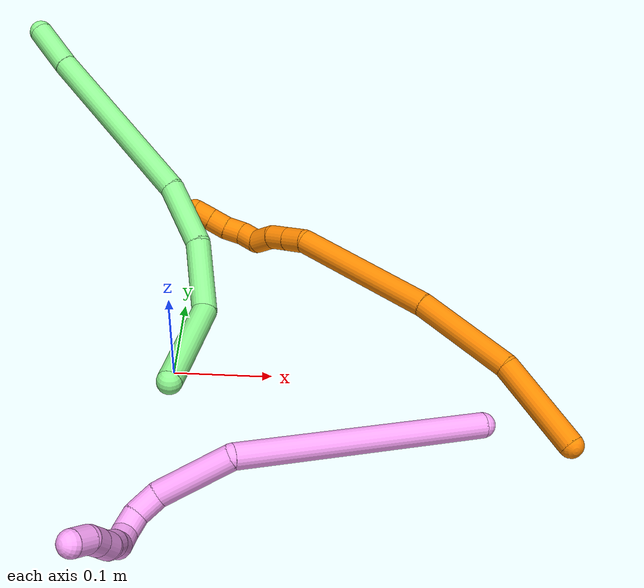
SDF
<sdf version="1.7">
 <world name="default">
  <model name="4">
   <static>0</static>
   <link name="4">
    <collision name="collision-cylinder-e_1_1_4">
     <pose>-0.051315 -0.038771 -0.110385 2.80382 -0.413337 -1.77603</pose>
     <geometry><cylinder><radius>0.0125</radius><length>0.255509</length></cylinder></geometry>
     <surface>
      <friction><ode><mu>1.16</mu><mu2>1.16</mu2><slip1>0</slip1><slip2>0</slip2></ode></friction>
      <contact><ode><kp>1e+06</kp><kd>1</kd><max_vel>0</max_vel><min_depth>0.001</min_depth></ode></contact>
     </surface>
    </collision>
    <visual name="visual-cylinder-e_1_1_4">
     <pose>-0.051315 -0.038771 -0.110385 2.80382 -0.413337 -1.77603</pose>
     <geometry><cylinder><radius>0.0125</radius><length>0.255509</length></cylinder></geometry>
     <material><ambient>1 0.65098 0.996078 1</ambient></material>
    </visual>
    <collision name="collision-cylinder-e_2_4_5">
     <pose>-0.135547 -0.089374 -0.237269 2.51947 -1.01811 -2.09636</pose>
     <geometry><cylinder><radius>0.0125</radius><length>0.077351</length></cylinder></geometry>
     <surface>
      <friction><ode><mu>1.16</mu><mu2>1.16</mu2><slip1>0</slip1><slip2>0</slip2></ode></friction>
      <contact><ode><kp>1e+06</kp><kd>1</kd><max_vel>0</max_vel><min_depth>0.001</min_depth></ode></contact>
     </surface>
    </collision>
    <visual name="visual-cylinder-e_2_4_5">
     <pose>-0.135547 -0.089374 -0.237269 2.51947 -1.01811 -2.09636</pose>
     <geometry><cylinder><radius>0.0125</radius><length>0.077351</length></cylinder></geometry>
     <material><ambient>1 0.65098 0.996078 1</ambient></material>
    </visual>
    <collision name="collision-cylinder-e_3_5_6">
     <pose>-0.17902 -0.100192 -0.26141 -3.00962 -0.940059 2.88289</pose>
     <geometry><cylinder><radius>0.0125</radius><length>0.026143</length></cylinder></geometry>
     <surface>
      <friction><ode><mu>1.16</mu><mu2>1.16</mu2><slip1>0</slip1><slip2>0</slip2></ode></friction>
      <contact><ode><kp>1e+06</kp><kd>1</kd><max_vel>0</max_vel><min_depth>0.001</min_depth></ode></contact>
     </surface>
    </collision>
    <visual name="visual-cylinder-e_3_5_6">
     <pose>-0.17902 -0.100192 -0.26141 -3.00962 -0.940059 2.88289</pose>
     <geometry><cylinder><radius>0.0125</radius><length>0.026143</length></cylinder></geometry>
     <material><ambient>1 0.65098 0.996078 1</ambient></material>
    </visual>
    <collision name="collision-cylinder-e_4_6_7">
     <pose>-0.195812 -0.094344 -0.275513 -2.49934 -0.657901 1.59664</pose>
     <geometry><cylinder><radius>0.0125</radius><length>0.020396</length></cylinder></geometry>
     <surface>
      <friction><ode><mu>1.16</mu><mu2>1.16</mu2><slip1>0</slip1><slip2>0</slip2></ode></friction>
      <contact><ode><kp>1e+06</kp><kd>1</kd><max_vel>0</max_vel><min_depth>0.001</min_depth></ode></contact>
     </surface>
    </collision>
    <visual name="visual-cylinder-e_4_6_7">
     <pose>-0.195812 -0.094344 -0.275513 -2.49934 -0.657901 1.59664</pose>
     <geometry><cylinder><radius>0.0125</radius><length>0.020396</length></cylinder></geometry>
     <material><ambient>1 0.65098 0.996078 1</ambient></material>
    </visual>
    <collision name="collision-cylinder-e_5_7_8">
     <pose>-0.202412 -0.083189 -0.289719 -2.45698 -0.036355 0.101947</pose>
     <geometry><cylinder><radius>0.0125</radius><length>0.020007</length></cylinder></geometry>
     <surface>
      <friction><ode><mu>1.16</mu><mu2>1.16</mu2><slip1>0</slip1><slip2>0</slip2></ode></friction>
      <contact><ode><kp>1e+06</kp><kd>1</kd><max_vel>0</max_vel><min_depth>0.001</min_depth></ode></contact>
     </surface>
    </collision>
    <visual name="visual-cylinder-e_5_7_8">
     <pose>-0.202412 -0.083189 -0.289719 -2.45698 -0.036355 0.101947</pose>
     <geometry><cylinder><radius>0.0125</radius><length>0.020007</length></cylinder></geometry>
     <material><ambient>1 0.65098 0.996078 1</ambient></material>
    </visual>
    <collision name="collision-cylinder-e_6_8_9">
     <pose>-0.197648 -0.073632 -0.305464 -2.75736 0.536082 -1.90913</pose>
     <geometry><cylinder><radius>0.0125</radius><length>0.020075</length></cylinder></geometry>
     <surface>
      <friction><ode><mu>1.16</mu><mu2>1.16</mu2><slip1>0</slip1><slip2>0</slip2></ode></friction>
      <contact><ode><kp>1e+06</kp><kd>1</kd><max_vel>0</max_vel><min_depth>0.001</min_depth></ode></contact>
     </surface>
    </collision>
    <visual name="visual-cylinder-e_6_8_9">
     <pose>-0.197648 -0.073632 -0.305464 -2.75736 0.536082 -1.90913</pose>
     <geometry><cylinder><radius>0.0125</radius><length>0.020075</length></cylinder></geometry>
     <material><ambient>1 0.65098 0.996078 1</ambient></material>
    </visual>
    <collision name="collision-cylinder-e_7_9_10">
     <pose>-0.18885 -0.065946 -0.321764 -2.64935 0.371669 -1.28492</pose>
     <geometry><cylinder><radius>0.0125</radius><length>0.020218</length></cylinder></geometry>
     <surface>
      <friction><ode><mu>1.16</mu><mu2>1.16</mu2><slip1>0</slip1><slip2>0</slip2></ode></friction>
      <contact><ode><kp>1e+06</kp><kd>1</kd><max_vel>0</max_vel><min_depth>0.001</min_depth></ode></contact>
     </surface>
    </collision>
    <visual name="visual-cylinder-e_7_9_10">
     <pose>-0.18885 -0.065946 -0.321764 -2.64935 0.371669 -1.28492</pose>
     <geometry><cylinder><radius>0.0125</radius><length>0.020218</length></cylinder></geometry>
     <material><ambient>1 0.65098 0.996078 1</ambient></material>
    </visual>
    <collision name="collision-cylinder-e_8_10_11">
     <pose>-0.180981 -0.060483 -0.339213 -3.03154 0.427933 -2.64507</pose>
     <geometry><cylinder><radius>0.0125</radius><length>0.020232</length></cylinder></geometry>
     <surface>
      <friction><ode><mu>1.16</mu><mu2>1.16</mu2><slip1>0</slip1><slip2>0</slip2></ode></friction>
      <contact><ode><kp>1e+06</kp><kd>1</kd><max_vel>0</max_vel><min_depth>0.001</min_depth></ode></contact>
     </surface>
    </collision>
    <visual name="visual-cylinder-e_8_10_11">
     <pose>-0.180981 -0.060483 -0.339213 -3.03154 0.427933 -2.64507</pose>
     <geometry><cylinder><radius>0.0125</radius><length>0.020232</length></cylinder></geometry>
     <material><ambient>1 0.65098 0.996078 1</ambient></material>
    </visual>
    <collision name="collision-cylinder-e_9_11_12">
     <pose>-0.172535 -0.057888 -0.357275 -2.96568 0.43872 -2.38829</pose>
     <geometry><cylinder><radius>0.0125</radius><length>0.020002</length></cylinder></geometry>
     <surface>
      <friction><ode><mu>1.16</mu><mu2>1.16</mu2><slip1>0</slip1><slip2>0</slip2></ode></friction>
      <contact><ode><kp>1e+06</kp><kd>1</kd><max_vel>0</max_vel><min_depth>0.001</min_depth></ode></contact>
     </surface>
    </collision>
    <visual name="visual-cylinder-e_9_11_12">
     <pose>-0.172535 -0.057888 -0.357275 -2.96568 0.43872 -2.38829</pose>
     <geometry><cylinder><radius>0.0125</radius><length>0.020002</length></cylinder></geometry>
     <material><ambient>1 0.65098 0.996078 1</ambient></material>
    </visual>
    <collision name="collision-cylinder-e_10_12_2">
     <pose>-0.168296 -0.054885 -0.376123 -2.99972 -0.000974 0.013713</pose>
     <geometry><cylinder><radius>0.0125</radius><length>0.020067</length></cylinder></geometry>
     <surface>
      <friction><ode><mu>1.16</mu><mu2>1.16</mu2><slip1>0</slip1><slip2>0</slip2></ode></friction>
      <contact><ode><kp>1e+06</kp><kd>1</kd><max_vel>0</max_vel><min_depth>0.001</min_depth></ode></contact>
     </surface>
    </collision>
    <visual name="visual-cylinder-e_10_12_2">
     <pose>-0.168296 -0.054885 -0.376123 -2.99972 -0.000974 0.013713</pose>
     <geometry><cylinder><radius>0.0125</radius><length>0.020067</length></cylinder></geometry>
     <material><ambient>1 0.65098 0.996078 1</ambient></material>
    </visual>
    <collision name="collision-sphere-2">
     <pose>-0.168306 -0.053466 -0.386056 0 -0 0</pose>
     <geometry><sphere><radius>0.0125</radius></sphere></geometry>
     <surface>
      <friction><ode><mu>1.16</mu><mu2>1.16</mu2><slip1>0</slip1><slip2>0</slip2></ode></friction>
      <contact><ode><kp>1e+06</kp><kd>1</kd><max_vel>0</max_vel><min_depth>0.001</min_depth></ode></contact>
     </surface>
    </collision>
    <visual name="visual-sphere-2">
     <pose>-0.168306 -0.053466 -0.386056 0 -0 0</pose>
     <geometry><sphere><radius>0.0125</radius></sphere></geometry>
     <material><ambient>1 0.65098 0.996078 1</ambient></material>
    </visual>
    <collision name="collision-sphere-12">
     <pose>-0.168286 -0.056304 -0.36619 0 -0 0</pose>
     <geometry><sphere><radius>0.0125</radius></sphere></geometry>
     <surface>
      <friction><ode><mu>1.16</mu><mu2>1.16</mu2><slip1>0</slip1><slip2>0</slip2></ode></friction>
      <contact><ode><kp>1e+06</kp><kd>1</kd><max_vel>0</max_vel><min_depth>0.001</min_depth></ode></contact>
     </surface>
    </collision>
    <visual name="visual-sphere-12">
     <pose>-0.168286 -0.056304 -0.36619 0 -0 0</pose>
     <geometry><sphere><radius>0.0125</radius></sphere></geometry>
     <material><ambient>1 0.65098 0.996078 1</ambient></material>
    </visual>
    <collision name="collision-sphere-11">
     <pose>-0.176783 -0.059473 -0.348361 0 -0 0</pose>
     <geometry><sphere><radius>0.0125</radius></sphere></geometry>
     <surface>
      <friction><ode><mu>1.16</mu><mu2>1.16</mu2><slip1>0</slip1><slip2>0</slip2></ode></friction>
      <contact><ode><kp>1e+06</kp><kd>1</kd><max_vel>0</max_vel><min_depth>0.001</min_depth></ode></contact>
     </surface>
    </collision>
    <visual name="visual-sphere-11">
     <pose>-0.176783 -0.059473 -0.348361 0 -0 0</pose>
     <geometry><sphere><radius>0.0125</radius></sphere></geometry>
     <material><ambient>1 0.65098 0.996078 1</ambient></material>
    </visual>
    <collision name="collision-sphere-10">
     <pose>-0.185179 -0.061494 -0.330065 0 -0 0</pose>
     <geometry><sphere><radius>0.0125</radius></sphere></geometry>
     <surface>
      <friction><ode><mu>1.16</mu><mu2>1.16</mu2><slip1>0</slip1><slip2>0</slip2></ode></friction>
      <contact><ode><kp>1e+06</kp><kd>1</kd><max_vel>0</max_vel><min_depth>0.001</min_depth></ode></contact>
     </surface>
    </collision>
    <visual name="visual-sphere-10">
     <pose>-0.185179 -0.061494 -0.330065 0 -0 0</pose>
     <geometry><sphere><radius>0.0125</radius></sphere></geometry>
     <material><ambient>1 0.65098 0.996078 1</ambient></material>
    </visual>
    <collision name="collision-sphere-9">
     <pose>-0.192522 -0.070397 -0.313464 0 -0 0</pose>
     <geometry><sphere><radius>0.0125</radius></sphere></geometry>
     <surface>
      <friction><ode><mu>1.16</mu><mu2>1.16</mu2><slip1>0</slip1><slip2>0</slip2></ode></friction>
      <contact><ode><kp>1e+06</kp><kd>1</kd><max_vel>0</max_vel><min_depth>0.001</min_depth></ode></contact>
     </surface>
    </collision>
    <visual name="visual-sphere-9">
     <pose>-0.192522 -0.070397 -0.313464 0 -0 0</pose>
     <geometry><sphere><radius>0.0125</radius></sphere></geometry>
     <material><ambient>1 0.65098 0.996078 1</ambient></material>
    </visual>
    <collision name="collision-sphere-4">
     <pose>-0.10263 -0.077542 -0.220769 0 -0 0</pose>
     <geometry><sphere><radius>0.0125</radius></sphere></geometry>
     <surface>
      <friction><ode><mu>1.16</mu><mu2>1.16</mu2><slip1>0</slip1><slip2>0</slip2></ode></friction>
      <contact><ode><kp>1e+06</kp><kd>1</kd><max_vel>0</max_vel><min_depth>0.001</min_depth></ode></contact>
     </surface>
    </collision>
    <visual name="visual-sphere-4">
     <pose>-0.10263 -0.077542 -0.220769 0 -0 0</pose>
     <geometry><sphere><radius>0.0125</radius></sphere></geometry>
     <material><ambient>1 0.65098 0.996078 1</ambient></material>
    </visual>
    <collision name="collision-sphere-1">
     <geometry><sphere><radius>0.0125</radius></sphere></geometry>
     <surface>
      <friction><ode><mu>1.16</mu><mu2>1.16</mu2><slip1>0</slip1><slip2>0</slip2></ode></friction>
      <contact><ode><kp>1e+06</kp><kd>1</kd><max_vel>0</max_vel><min_depth>0.001</min_depth></ode></contact>
     </surface>
    </collision>
    <visual name="visual-sphere-1">
     <geometry><sphere><radius>0.0125</radius></sphere></geometry>
     <material><ambient>1 0.65098 0.996078 1</ambient></material>
    </visual>
    <collision name="collision-sphere-8">
     <pose>-0.202775 -0.076867 -0.297463 0 -0 0</pose>
     <geometry><sphere><radius>0.0125</radius></sphere></geometry>
     <surface>
      <friction><ode><mu>1.16</mu><mu2>1.16</mu2><slip1>0</slip1><slip2>0</slip2></ode></friction>
      <contact><ode><kp>1e+06</kp><kd>1</kd><max_vel>0</max_vel><min_depth>0.001</min_depth></ode></contact>
     </surface>
    </collision>
    <visual name="visual-sphere-8">
     <pose>-0.202775 -0.076867 -0.297463 0 -0 0</pose>
     <geometry><sphere><radius>0.0125</radius></sphere></geometry>
     <material><ambient>1 0.65098 0.996078 1</ambient></material>
    </visual>
    <collision name="collision-sphere-5">
     <pose>-0.168464 -0.101206 -0.253768 0 -0 0</pose>
     <geometry><sphere><radius>0.0125</radius></sphere></geometry>
     <surface>
      <friction><ode><mu>1.16</mu><mu2>1.16</mu2><slip1>0</slip1><slip2>0</slip2></ode></friction>
      <contact><ode><kp>1e+06</kp><kd>1</kd><max_vel>0</max_vel><min_depth>0.001</min_depth></ode></contact>
     </surface>
    </collision>
    <visual name="visual-sphere-5">
     <pose>-0.168464 -0.101206 -0.253768 0 -0 0</pose>
     <geometry><sphere><radius>0.0125</radius></sphere></geometry>
     <material><ambient>1 0.65098 0.996078 1</ambient></material>
    </visual>
    <collision name="collision-sphere-6">
     <pose>-0.189577 -0.099178 -0.269052 0 -0 0</pose>
     <geometry><sphere><radius>0.0125</radius></sphere></geometry>
     <surface>
      <friction><ode><mu>1.16</mu><mu2>1.16</mu2><slip1>0</slip1><slip2>0</slip2></ode></friction>
      <contact><ode><kp>1e+06</kp><kd>1</kd><max_vel>0</max_vel><min_depth>0.001</min_depth></ode></contact>
     </surface>
    </collision>
    <visual name="visual-sphere-6">
     <pose>-0.189577 -0.099178 -0.269052 0 -0 0</pose>
     <geometry><sphere><radius>0.0125</radius></sphere></geometry>
     <material><ambient>1 0.65098 0.996078 1</ambient></material>
    </visual>
    <collision name="collision-sphere-7">
     <pose>-0.202048 -0.08951 -0.281975 0 -0 0</pose>
     <geometry><sphere><radius>0.0125</radius></sphere></geometry>
     <surface>
      <friction><ode><mu>1.16</mu><mu2>1.16</mu2><slip1>0</slip1><slip2>0</slip2></ode></friction>
      <contact><ode><kp>1e+06</kp><kd>1</kd><max_vel>0</max_vel><min_depth>0.001</min_depth></ode></contact>
     </surface>
    </collision>
    <visual name="visual-sphere-7">
     <pose>-0.202048 -0.08951 -0.281975 0 -0 0</pose>
     <geometry><sphere><radius>0.0125</radius></sphere></geometry>
     <material><ambient>1 0.65098 0.996078 1</ambient></material>
    </visual>
    <inertial>
     <pose>-0.109191 -0.058644 -0.198003 0 -0 0</pose>
     <mass>0.5</mass>
     <inertia>
      <ixx>-0.001563</ixx>
      <ixy>0</ixy>
      <ixz>0</ixz>
      <iyy>-0.000791</iyy>
      <iyz>0</iyz>
      <izz>0.001002</izz>
     </inertia>
    </inertial>
   </link>
   <pose>0.308616 -0.064967 0.011598 -2.99099 -0.965941 0.554545</pose>
  </model>
  <model name="13">
   <static>0</static>
   <link name="13">
    <collision name="collision-cylinder-e_1_1_4">
     <pose>0.025053 0.046993 0.000779 -1.55423 0.489739 -0.482004</pose>
     <geometry><cylinder><radius>0.0125</radius><length>0.10652</length></cylinder></geometry>
     <surface>
      <friction><ode><mu>1.16</mu><mu2>1.16</mu2><slip1>0</slip1><slip2>0</slip2></ode></friction>
      <contact><ode><kp>1e+06</kp><kd>1</kd><max_vel>0</max_vel><min_depth>0.001</min_depth></ode></contact>
     </surface>
    </collision>
    <visual name="visual-cylinder-e_1_1_4">
     <pose>0.025053 0.046993 0.000779 -1.55423 0.489739 -0.482004</pose>
     <geometry><cylinder><radius>0.0125</radius><length>0.10652</length></cylinder></geometry>
     <material><ambient>0.564706 0.984314 0.572549 1</ambient></material>
    </visual>
    <collision name="collision-cylinder-e_2_4_5">
     <pose>0.052355 0.126078 0.019528 -1.06031 0.061056 -0.035794</pose>
     <geometry><cylinder><radius>0.0125</radius><length>0.073699</length></cylinder></geometry>
     <surface>
      <friction><ode><mu>1.16</mu><mu2>1.16</mu2><slip1>0</slip1><slip2>0</slip2></ode></friction>
      <contact><ode><kp>1e+06</kp><kd>1</kd><max_vel>0</max_vel><min_depth>0.001</min_depth></ode></contact>
     </surface>
    </collision>
    <visual name="visual-cylinder-e_2_4_5">
     <pose>0.052355 0.126078 0.019528 -1.06031 0.061056 -0.035794</pose>
     <geometry><cylinder><radius>0.0125</radius><length>0.073699</length></cylinder></geometry>
     <material><ambient>0.564706 0.984314 0.572549 1</ambient></material>
    </visual>
    <collision name="collision-cylinder-e_3_5_6">
     <pose>0.046378 0.189084 0.051049 -1.15773 -0.239024 0.15664</pose>
     <geometry><cylinder><radius>0.0125</radius><length>0.069482</length></cylinder></geometry>
     <surface>
      <friction><ode><mu>1.16</mu><mu2>1.16</mu2><slip1>0</slip1><slip2>0</slip2></ode></friction>
      <contact><ode><kp>1e+06</kp><kd>1</kd><max_vel>0</max_vel><min_depth>0.001</min_depth></ode></contact>
     </surface>
    </collision>
    <visual name="visual-cylinder-e_3_5_6">
     <pose>0.046378 0.189084 0.051049 -1.15773 -0.239024 0.15664</pose>
     <geometry><cylinder><radius>0.0125</radius><length>0.069482</length></cylinder></geometry>
     <material><ambient>0.564706 0.984314 0.572549 1</ambient></material>
    </visual>
    <collision name="collision-cylinder-e_4_6_7">
     <pose>-0.006598 0.302301 0.094509 -1.2222 -0.472438 0.334125</pose>
     <geometry><cylinder><radius>0.0125</radius><length>0.196684</length></cylinder></geometry>
     <surface>
      <friction><ode><mu>1.16</mu><mu2>1.16</mu2><slip1>0</slip1><slip2>0</slip2></ode></friction>
      <contact><ode><kp>1e+06</kp><kd>1</kd><max_vel>0</max_vel><min_depth>0.001</min_depth></ode></contact>
     </surface>
    </collision>
    <visual name="visual-cylinder-e_4_6_7">
     <pose>-0.006598 0.302301 0.094509 -1.2222 -0.472438 0.334125</pose>
     <geometry><cylinder><radius>0.0125</radius><length>0.196684</length></cylinder></geometry>
     <material><ambient>0.564706 0.984314 0.572549 1</ambient></material>
    </visual>
    <collision name="collision-cylinder-e_5_7_2">
     <pose>-0.062248 0.407462 0.133217 -1.20345 -0.418694 0.289737</pose>
     <geometry><cylinder><radius>0.0125</radius><length>0.053615</length></cylinder></geometry>
     <surface>
      <friction><ode><mu>1.16</mu><mu2>1.16</mu2><slip1>0</slip1><slip2>0</slip2></ode></friction>
      <contact><ode><kp>1e+06</kp><kd>1</kd><max_vel>0</max_vel><min_depth>0.001</min_depth></ode></contact>
     </surface>
    </collision>
    <visual name="visual-cylinder-e_5_7_2">
     <pose>-0.062248 0.407462 0.133217 -1.20345 -0.418694 0.289737</pose>
     <geometry><cylinder><radius>0.0125</radius><length>0.053615</length></cylinder></geometry>
     <material><ambient>0.564706 0.984314 0.572549 1</ambient></material>
    </visual>
    <collision name="collision-sphere-2">
     <pose>-0.073148 0.43032 0.142013 0 -0 0</pose>
     <geometry><sphere><radius>0.0125</radius></sphere></geometry>
     <surface>
      <friction><ode><mu>1.16</mu><mu2>1.16</mu2><slip1>0</slip1><slip2>0</slip2></ode></friction>
      <contact><ode><kp>1e+06</kp><kd>1</kd><max_vel>0</max_vel><min_depth>0.001</min_depth></ode></contact>
     </surface>
    </collision>
    <visual name="visual-sphere-2">
     <pose>-0.073148 0.43032 0.142013 0 -0 0</pose>
     <geometry><sphere><radius>0.0125</radius></sphere></geometry>
     <material><ambient>0.564706 0.984314 0.572549 1</ambient></material>
    </visual>
    <collision name="collision-sphere-7">
     <pose>-0.051349 0.384604 0.124421 0 -0 0</pose>
     <geometry><sphere><radius>0.0125</radius></sphere></geometry>
     <surface>
      <friction><ode><mu>1.16</mu><mu2>1.16</mu2><slip1>0</slip1><slip2>0</slip2></ode></friction>
      <contact><ode><kp>1e+06</kp><kd>1</kd><max_vel>0</max_vel><min_depth>0.001</min_depth></ode></contact>
     </surface>
    </collision>
    <visual name="visual-sphere-7">
     <pose>-0.051349 0.384604 0.124421 0 -0 0</pose>
     <geometry><sphere><radius>0.0125</radius></sphere></geometry>
     <material><ambient>0.564706 0.984314 0.572549 1</ambient></material>
    </visual>
    <collision name="collision-sphere-6">
     <pose>0.038153 0.219998 0.064598 0 -0 0</pose>
     <geometry><sphere><radius>0.0125</radius></sphere></geometry>
     <surface>
      <friction><ode><mu>1.16</mu><mu2>1.16</mu2><slip1>0</slip1><slip2>0</slip2></ode></friction>
      <contact><ode><kp>1e+06</kp><kd>1</kd><max_vel>0</max_vel><min_depth>0.001</min_depth></ode></contact>
     </surface>
    </collision>
    <visual name="visual-sphere-6">
     <pose>0.038153 0.219998 0.064598 0 -0 0</pose>
     <geometry><sphere><radius>0.0125</radius></sphere></geometry>
     <material><ambient>0.564706 0.984314 0.572549 1</ambient></material>
    </visual>
    <collision name="collision-sphere-5">
     <pose>0.054604 0.158169 0.037499 0 -0 0</pose>
     <geometry><sphere><radius>0.0125</radius></sphere></geometry>
     <surface>
      <friction><ode><mu>1.16</mu><mu2>1.16</mu2><slip1>0</slip1><slip2>0</slip2></ode></friction>
      <contact><ode><kp>1e+06</kp><kd>1</kd><max_vel>0</max_vel><min_depth>0.001</min_depth></ode></contact>
     </surface>
    </collision>
    <visual name="visual-sphere-5">
     <pose>0.054604 0.158169 0.037499 0 -0 0</pose>
     <geometry><sphere><radius>0.0125</radius></sphere></geometry>
     <material><ambient>0.564706 0.984314 0.572549 1</ambient></material>
    </visual>
    <collision name="collision-sphere-1">
     <geometry><sphere><radius>0.0125</radius></sphere></geometry>
     <surface>
      <friction><ode><mu>1.16</mu><mu2>1.16</mu2><slip1>0</slip1><slip2>0</slip2></ode></friction>
      <contact><ode><kp>1e+06</kp><kd>1</kd><max_vel>0</max_vel><min_depth>0.001</min_depth></ode></contact>
     </surface>
    </collision>
    <visual name="visual-sphere-1">
     <geometry><sphere><radius>0.0125</radius></sphere></geometry>
     <material><ambient>0.564706 0.984314 0.572549 1</ambient></material>
    </visual>
    <collision name="collision-sphere-4">
     <pose>0.050107 0.093986 0.001557 0 -0 0</pose>
     <geometry><sphere><radius>0.0125</radius></sphere></geometry>
     <surface>
      <friction><ode><mu>1.16</mu><mu2>1.16</mu2><slip1>0</slip1><slip2>0</slip2></ode></friction>
      <contact><ode><kp>1e+06</kp><kd>1</kd><max_vel>0</max_vel><min_depth>0.001</min_depth></ode></contact>
     </surface>
    </collision>
    <visual name="visual-sphere-4">
     <pose>0.050107 0.093986 0.001557 0 -0 0</pose>
     <geometry><sphere><radius>0.0125</radius></sphere></geometry>
     <material><ambient>0.564706 0.984314 0.572549 1</ambient></material>
    </visual>
    <inertial>
     <pose>0.010229 0.217479 0.0616 0 -0 0</pose>
     <mass>0.5</mass>
     <inertia>
      <ixx>0.000847</ixx>
      <ixy>0</ixy>
      <ixz>0</ixz>
      <iyy>0.000545</iyy>
      <iyz>0</iyz>
      <izz>-0.000436</izz>
     </inertia>
    </inertial>
   </link>
   <pose>0.012981 -0.099217 0.090274 -0.051741 0.081483 0.288843</pose>
  </model>
  <model name="19">
   <static>0</static>
   <link name="19">
    <collision name="collision-cylinder-e_1_1_4">
     <pose>-0.010825 0.030941 -0.035221 -2.42079 -0.226931 0.587278</pose>
     <geometry><cylinder><radius>0.0125</radius><length>0.09623</length></cylinder></geometry>
     <surface>
      <friction><ode><mu>1.16</mu><mu2>1.16</mu2><slip1>0</slip1><slip2>0</slip2></ode></friction>
      <contact><ode><kp>1e+06</kp><kd>1</kd><max_vel>0</max_vel><min_depth>0.001</min_depth></ode></contact>
     </surface>
    </collision>
    <visual name="visual-cylinder-e_1_1_4">
     <pose>-0.010825 0.030941 -0.035221 -2.42079 -0.226931 0.587278</pose>
     <geometry><cylinder><radius>0.0125</radius><length>0.09623</length></cylinder></geometry>
     <material><ambient>0.996078 0.537255 0 1</ambient></material>
    </visual>
    <collision name="collision-cylinder-e_2_4_5">
     <pose>-0.043677 0.086783 -0.111112 -2.59221 -0.432708 1.32476</pose>
     <geometry><cylinder><radius>0.0125</radius><length>0.105057</length></cylinder></geometry>
     <surface>
      <friction><ode><mu>1.16</mu><mu2>1.16</mu2><slip1>0</slip1><slip2>0</slip2></ode></friction>
      <contact><ode><kp>1e+06</kp><kd>1</kd><max_vel>0</max_vel><min_depth>0.001</min_depth></ode></contact>
     </surface>
    </collision>
    <visual name="visual-cylinder-e_2_4_5">
     <pose>-0.043677 0.086783 -0.111112 -2.59221 -0.432708 1.32476</pose>
     <geometry><cylinder><radius>0.0125</radius><length>0.105057</length></cylinder></geometry>
     <material><ambient>0.996078 0.537255 0 1</ambient></material>
    </visual>
    <collision name="collision-cylinder-e_3_5_6">
     <pose>-0.105098 0.141323 -0.20809 -2.65706 -0.554327 1.71115</pose>
     <geometry><cylinder><radius>0.0125</radius><length>0.149681</length></cylinder></geometry>
     <surface>
      <friction><ode><mu>1.16</mu><mu2>1.16</mu2><slip1>0</slip1><slip2>0</slip2></ode></friction>
      <contact><ode><kp>1e+06</kp><kd>1</kd><max_vel>0</max_vel><min_depth>0.001</min_depth></ode></contact>
     </surface>
    </collision>
    <visual name="visual-cylinder-e_3_5_6">
     <pose>-0.105098 0.141323 -0.20809 -2.65706 -0.554327 1.71115</pose>
     <geometry><cylinder><radius>0.0125</radius><length>0.149681</length></cylinder></geometry>
     <material><ambient>0.996078 0.537255 0 1</ambient></material>
    </visual>
    <collision name="collision-cylinder-e_4_6_7">
     <pose>-0.15139 0.171405 -0.273523 -3.09319 -0.646851 2.99741</pose>
     <geometry><cylinder><radius>0.0125</radius><length>0.022892</length></cylinder></geometry>
     <surface>
      <friction><ode><mu>1.16</mu><mu2>1.16</mu2><slip1>0</slip1><slip2>0</slip2></ode></friction>
      <contact><ode><kp>1e+06</kp><kd>1</kd><max_vel>0</max_vel><min_depth>0.001</min_depth></ode></contact>
     </surface>
    </collision>
    <visual name="visual-cylinder-e_4_6_7">
     <pose>-0.15139 0.171405 -0.273523 -3.09319 -0.646851 2.99741</pose>
     <geometry><cylinder><radius>0.0125</radius><length>0.022892</length></cylinder></geometry>
     <material><ambient>0.996078 0.537255 0 1</ambient></material>
    </visual>
    <collision name="collision-cylinder-e_5_7_8">
     <pose>-0.164909 0.172266 -0.291399 -3.09378 -0.64697 2.99919</pose>
     <geometry><cylinder><radius>0.0125</radius><length>0.021965</length></cylinder></geometry>
     <surface>
      <friction><ode><mu>1.16</mu><mu2>1.16</mu2><slip1>0</slip1><slip2>0</slip2></ode></friction>
      <contact><ode><kp>1e+06</kp><kd>1</kd><max_vel>0</max_vel><min_depth>0.001</min_depth></ode></contact>
     </surface>
    </collision>
    <visual name="visual-cylinder-e_5_7_8">
     <pose>-0.164909 0.172266 -0.291399 -3.09378 -0.64697 2.99919</pose>
     <geometry><cylinder><radius>0.0125</radius><length>0.021965</length></cylinder></geometry>
     <material><ambient>0.996078 0.537255 0 1</ambient></material>
    </visual>
    <collision name="collision-cylinder-e_6_8_9">
     <pose>-0.179416 0.169664 -0.30831 2.78693 -0.736471 -2.27192</pose>
     <geometry><cylinder><radius>0.0125</radius><length>0.023485</length></cylinder></geometry>
     <surface>
      <friction><ode><mu>1.16</mu><mu2>1.16</mu2><slip1>0</slip1><slip2>0</slip2></ode></friction>
      <contact><ode><kp>1e+06</kp><kd>1</kd><max_vel>0</max_vel><min_depth>0.001</min_depth></ode></contact>
     </surface>
    </collision>
    <visual name="visual-cylinder-e_6_8_9">
     <pose>-0.179416 0.169664 -0.30831 2.78693 -0.736471 -2.27192</pose>
     <geometry><cylinder><radius>0.0125</radius><length>0.023485</length></cylinder></geometry>
     <material><ambient>0.996078 0.537255 0 1</ambient></material>
    </visual>
    <collision name="collision-cylinder-e_7_9_10">
     <pose>-0.192188 0.170122 -0.32481 -2.74647 -0.495522 1.80272</pose>
     <geometry><cylinder><radius>0.0125</radius><length>0.020549</length></cylinder></geometry>
     <surface>
      <friction><ode><mu>1.16</mu><mu2>1.16</mu2><slip1>0</slip1><slip2>0</slip2></ode></friction>
      <contact><ode><kp>1e+06</kp><kd>1</kd><max_vel>0</max_vel><min_depth>0.001</min_depth></ode></contact>
     </surface>
    </collision>
    <visual name="visual-cylinder-e_7_9_10">
     <pose>-0.192188 0.170122 -0.32481 -2.74647 -0.495522 1.80272</pose>
     <geometry><cylinder><radius>0.0125</radius><length>0.020549</length></cylinder></geometry>
     <material><ambient>0.996078 0.537255 0 1</ambient></material>
    </visual>
    <collision name="collision-cylinder-e_8_10_11">
     <pose>-0.20431 0.177791 -0.338729 -2.4973 -0.803742 1.81012</pose>
     <geometry><cylinder><radius>0.0125</radius><length>0.020102</length></cylinder></geometry>
     <surface>
      <friction><ode><mu>1.16</mu><mu2>1.16</mu2><slip1>0</slip1><slip2>0</slip2></ode></friction>
      <contact><ode><kp>1e+06</kp><kd>1</kd><max_vel>0</max_vel><min_depth>0.001</min_depth></ode></contact>
     </surface>
    </collision>
    <visual name="visual-cylinder-e_8_10_11">
     <pose>-0.20431 0.177791 -0.338729 -2.4973 -0.803742 1.81012</pose>
     <geometry><cylinder><radius>0.0125</radius><length>0.020102</length></cylinder></geometry>
     <material><ambient>0.996078 0.537255 0 1</ambient></material>
    </visual>
    <collision name="collision-cylinder-e_9_11_12">
     <pose>-0.217703 0.18821 -0.349132 -2.22981 -0.663269 1.22449</pose>
     <geometry><cylinder><radius>0.0125</radius><length>0.020001</length></cylinder></geometry>
     <surface>
      <friction><ode><mu>1.16</mu><mu2>1.16</mu2><slip1>0</slip1><slip2>0</slip2></ode></friction>
      <contact><ode><kp>1e+06</kp><kd>1</kd><max_vel>0</max_vel><min_depth>0.001</min_depth></ode></contact>
     </surface>
    </collision>
    <visual name="visual-cylinder-e_9_11_12">
     <pose>-0.217703 0.18821 -0.349132 -2.22981 -0.663269 1.22449</pose>
     <geometry><cylinder><radius>0.0125</radius><length>0.020001</length></cylinder></geometry>
     <material><ambient>0.996078 0.537255 0 1</ambient></material>
    </visual>
    <collision name="collision-cylinder-e_10_12_2">
     <pose>-0.230154 0.200699 -0.358606 -2.20972 -0.679105 1.22473</pose>
     <geometry><cylinder><radius>0.0125</radius><length>0.020038</length></cylinder></geometry>
     <surface>
      <friction><ode><mu>1.16</mu><mu2>1.16</mu2><slip1>0</slip1><slip2>0</slip2></ode></friction>
      <contact><ode><kp>1e+06</kp><kd>1</kd><max_vel>0</max_vel><min_depth>0.001</min_depth></ode></contact>
     </surface>
    </collision>
    <visual name="visual-cylinder-e_10_12_2">
     <pose>-0.230154 0.200699 -0.358606 -2.20972 -0.679105 1.22473</pose>
     <geometry><cylinder><radius>0.0125</radius><length>0.020038</length></cylinder></geometry>
     <material><ambient>0.996078 0.537255 0 1</ambient></material>
    </visual>
    <collision name="collision-sphere-2">
     <pose>-0.236446 0.206957 -0.363255 0 -0 0</pose>
     <geometry><sphere><radius>0.0125</radius></sphere></geometry>
     <surface>
      <friction><ode><mu>1.16</mu><mu2>1.16</mu2><slip1>0</slip1><slip2>0</slip2></ode></friction>
      <contact><ode><kp>1e+06</kp><kd>1</kd><max_vel>0</max_vel><min_depth>0.001</min_depth></ode></contact>
     </surface>
    </collision>
    <visual name="visual-sphere-2">
     <pose>-0.236446 0.206957 -0.363255 0 -0 0</pose>
     <geometry><sphere><radius>0.0125</radius></sphere></geometry>
     <material><ambient>0.996078 0.537255 0 1</ambient></material>
    </visual>
    <collision name="collision-sphere-12">
     <pose>-0.223861 0.19444 -0.353957 0 -0 0</pose>
     <geometry><sphere><radius>0.0125</radius></sphere></geometry>
     <surface>
      <friction><ode><mu>1.16</mu><mu2>1.16</mu2><slip1>0</slip1><slip2>0</slip2></ode></friction>
      <contact><ode><kp>1e+06</kp><kd>1</kd><max_vel>0</max_vel><min_depth>0.001</min_depth></ode></contact>
     </surface>
    </collision>
    <visual name="visual-sphere-12">
     <pose>-0.223861 0.19444 -0.353957 0 -0 0</pose>
     <geometry><sphere><radius>0.0125</radius></sphere></geometry>
     <material><ambient>0.996078 0.537255 0 1</ambient></material>
    </visual>
    <collision name="collision-sphere-11">
     <pose>-0.211546 0.18198 -0.344307 0 -0 0</pose>
     <geometry><sphere><radius>0.0125</radius></sphere></geometry>
     <surface>
      <friction><ode><mu>1.16</mu><mu2>1.16</mu2><slip1>0</slip1><slip2>0</slip2></ode></friction>
      <contact><ode><kp>1e+06</kp><kd>1</kd><max_vel>0</max_vel><min_depth>0.001</min_depth></ode></contact>
     </surface>
    </collision>
    <visual name="visual-sphere-11">
     <pose>-0.211546 0.18198 -0.344307 0 -0 0</pose>
     <geometry><sphere><radius>0.0125</radius></sphere></geometry>
     <material><ambient>0.996078 0.537255 0 1</ambient></material>
    </visual>
    <collision name="collision-sphere-10">
     <pose>-0.197074 0.173601 -0.333152 0 -0 0</pose>
     <geometry><sphere><radius>0.0125</radius></sphere></geometry>
     <surface>
      <friction><ode><mu>1.16</mu><mu2>1.16</mu2><slip1>0</slip1><slip2>0</slip2></ode></friction>
      <contact><ode><kp>1e+06</kp><kd>1</kd><max_vel>0</max_vel><min_depth>0.001</min_depth></ode></contact>
     </surface>
    </collision>
    <visual name="visual-sphere-10">
     <pose>-0.197074 0.173601 -0.333152 0 -0 0</pose>
     <geometry><sphere><radius>0.0125</radius></sphere></geometry>
     <material><ambient>0.996078 0.537255 0 1</ambient></material>
    </visual>
    <collision name="collision-sphere-9">
     <pose>-0.187303 0.166642 -0.316468 0 -0 0</pose>
     <geometry><sphere><radius>0.0125</radius></sphere></geometry>
     <surface>
      <friction><ode><mu>1.16</mu><mu2>1.16</mu2><slip1>0</slip1><slip2>0</slip2></ode></friction>
      <contact><ode><kp>1e+06</kp><kd>1</kd><max_vel>0</max_vel><min_depth>0.001</min_depth></ode></contact>
     </surface>
    </collision>
    <visual name="visual-sphere-9">
     <pose>-0.187303 0.166642 -0.316468 0 -0 0</pose>
     <geometry><sphere><radius>0.0125</radius></sphere></geometry>
     <material><ambient>0.996078 0.537255 0 1</ambient></material>
    </visual>
    <collision name="collision-sphere-4">
     <pose>-0.021651 0.061882 -0.070442 0 -0 0</pose>
     <geometry><sphere><radius>0.0125</radius></sphere></geometry>
     <surface>
      <friction><ode><mu>1.16</mu><mu2>1.16</mu2><slip1>0</slip1><slip2>0</slip2></ode></friction>
      <contact><ode><kp>1e+06</kp><kd>1</kd><max_vel>0</max_vel><min_depth>0.001</min_depth></ode></contact>
     </surface>
    </collision>
    <visual name="visual-sphere-4">
     <pose>-0.021651 0.061882 -0.070442 0 -0 0</pose>
     <geometry><sphere><radius>0.0125</radius></sphere></geometry>
     <material><ambient>0.996078 0.537255 0 1</ambient></material>
    </visual>
    <collision name="collision-sphere-1">
     <geometry><sphere><radius>0.0125</radius></sphere></geometry>
     <surface>
      <friction><ode><mu>1.16</mu><mu2>1.16</mu2><slip1>0</slip1><slip2>0</slip2></ode></friction>
      <contact><ode><kp>1e+06</kp><kd>1</kd><max_vel>0</max_vel><min_depth>0.001</min_depth></ode></contact>
     </surface>
    </collision>
    <visual name="visual-sphere-1">
     <geometry><sphere><radius>0.0125</radius></sphere></geometry>
     <material><ambient>0.996078 0.537255 0 1</ambient></material>
    </visual>
    <collision name="collision-sphere-8">
     <pose>-0.171529 0.172685 -0.300152 0 -0 0</pose>
     <geometry><sphere><radius>0.0125</radius></sphere></geometry>
     <surface>
      <friction><ode><mu>1.16</mu><mu2>1.16</mu2><slip1>0</slip1><slip2>0</slip2></ode></friction>
      <contact><ode><kp>1e+06</kp><kd>1</kd><max_vel>0</max_vel><min_depth>0.001</min_depth></ode></contact>
     </surface>
    </collision>
    <visual name="visual-sphere-8">
     <pose>-0.171529 0.172685 -0.300152 0 -0 0</pose>
     <geometry><sphere><radius>0.0125</radius></sphere></geometry>
     <material><ambient>0.996078 0.537255 0 1</ambient></material>
    </visual>
    <collision name="collision-sphere-5">
     <pose>-0.065704 0.111683 -0.151782 0 -0 0</pose>
     <geometry><sphere><radius>0.0125</radius></sphere></geometry>
     <surface>
      <friction><ode><mu>1.16</mu><mu2>1.16</mu2><slip1>0</slip1><slip2>0</slip2></ode></friction>
      <contact><ode><kp>1e+06</kp><kd>1</kd><max_vel>0</max_vel><min_depth>0.001</min_depth></ode></contact>
     </surface>
    </collision>
    <visual name="visual-sphere-5">
     <pose>-0.065704 0.111683 -0.151782 0 -0 0</pose>
     <geometry><sphere><radius>0.0125</radius></sphere></geometry>
     <material><ambient>0.996078 0.537255 0 1</ambient></material>
    </visual>
    <collision name="collision-sphere-6">
     <pose>-0.144492 0.170963 -0.264399 0 -0 0</pose>
     <geometry><sphere><radius>0.0125</radius></sphere></geometry>
     <surface>
      <friction><ode><mu>1.16</mu><mu2>1.16</mu2><slip1>0</slip1><slip2>0</slip2></ode></friction>
      <contact><ode><kp>1e+06</kp><kd>1</kd><max_vel>0</max_vel><min_depth>0.001</min_depth></ode></contact>
     </surface>
    </collision>
    <visual name="visual-sphere-6">
     <pose>-0.144492 0.170963 -0.264399 0 -0 0</pose>
     <geometry><sphere><radius>0.0125</radius></sphere></geometry>
     <material><ambient>0.996078 0.537255 0 1</ambient></material>
    </visual>
    <collision name="collision-sphere-7">
     <pose>-0.158289 0.171847 -0.282646 0 -0 0</pose>
     <geometry><sphere><radius>0.0125</radius></sphere></geometry>
     <surface>
      <friction><ode><mu>1.16</mu><mu2>1.16</mu2><slip1>0</slip1><slip2>0</slip2></ode></friction>
      <contact><ode><kp>1e+06</kp><kd>1</kd><max_vel>0</max_vel><min_depth>0.001</min_depth></ode></contact>
     </surface>
    </collision>
    <visual name="visual-sphere-7">
     <pose>-0.158289 0.171847 -0.282646 0 -0 0</pose>
     <geometry><sphere><radius>0.0125</radius></sphere></geometry>
     <material><ambient>0.996078 0.537255 0 1</ambient></material>
    </visual>
    <inertial>
     <pose>-0.099371 0.119592 -0.187529 0 -0 0</pose>
     <mass>0.5</mass>
     <inertia>
      <ixx>0.000404</ixx>
      <ixy>0</ixy>
      <ixz>0</ixz>
      <iyy>0.000461</iyy>
      <iyz>0</iyz>
      <izz>-2.5e-05</izz>
     </inertia>
    </inertial>
   </link>
   <pose>0.387457 -0.09997 0.027296 1.26432 -0.206093 0.382029</pose>
  </model>
 </world>
</sdf>
